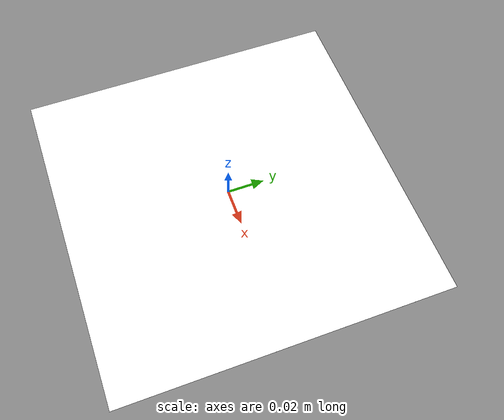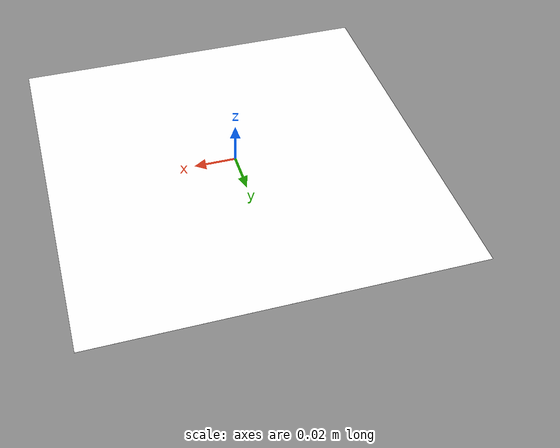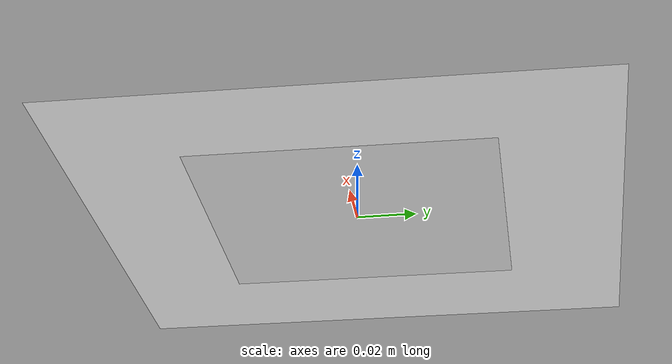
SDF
<?xml version="1.0" ?>
    <sdf version="1.6">
        <model name="marker_24">
            <link name='marker'>
                <pose frame=''>0 0 0 0 0 0</pose>
                <visual name='visual'>
                    <geometry>
                        <box>
                            <size>0.1778 0.1778 1e-5</size>
                        </box>
                    </geometry>
                    <material>
                        <script>
                            <uri>model://marker_24/materials/scripts</uri>
                            <uri>model://marker_24/materials/textures</uri>
                            <name>ArucoVisualMarker24/Marker</name>
                        </script>
                        <ambient>1 1 1 1</ambient>
                        <diffuse>1 1 1 1</diffuse>
                        <specular>0 0 0 1</specular>
                        <emissive>1 1 1 0</emissive>
                        <shader type='vertex'>
                            <normal_map>__default__</normal_map>
                        </shader>
                    </material>
                    <pose frame=''>0 0 0 0 -0 0</pose>
                    <cast_shadows>1</cast_shadows>
                    <transparency>0</transparency>
                </visual>
                <collision name='collision'>
                    <laser_retro>0</laser_retro>
                    <max_contacts>10</max_contacts>
                    <pose frame=''>0 0 0 0 -0 0</pose>
                    <geometry>
                        <box>
                            <size>0.1 0.1 1e-05</size>
                        </box>
                    </geometry>
                </collision>
            </link>

            <link name='marker_pad'>
                <pose frame='marker'>0 0 -1e-5 0 -0 0</pose>
                <visual name='visual'>
                    <geometry>
                        <box>
                            <size>0.1 0.1 1e-5</size>
                        </box>
                    </geometry>
                    <material>
                        <lighting>1</lighting>
                        <script>
                            <uri>file://media/materials/scripts/gazebo.material</uri>
                            <name>Gazebo/White</name>
                        </script>
                        <ambient>0.3 0.3 0.3 1</ambient>
                        <diffuse>0.7 0.7 0.7 1</diffuse>
                        <specular>0.01 0.01 0.01 1</specular>
                        <emissive>1 1 1 0</emissive>
                        <shader type='vertex'>
                            <normal_map>__default__</normal_map>
                        </shader>
                    </material>
                    <cast_shadows>1</cast_shadows>
                    <transparency>0</transparency>
                </visual>
                <collision name='collision'>
                    <laser_retro>0</laser_retro>
                    <max_contacts>10</max_contacts>
                    <pose frame=''>0 0 0 0 -0 0</pose>
                    <geometry>
                        <box>
                            <size>0.1 0.1 1e-5</size>
                        </box>
                    </geometry>
                </collision>
            </link>

            <joint name='marker_JOINT_marker_pad' type='revolute'>
                <parent>marker</parent>
                <child>marker_pad</child>
                <pose frame=''>0 0 0 0 -0 0</pose>
                <axis>
                    <xyz>0 0 1</xyz>
                    <limit>
                        <upper>0</upper>
                        <lower>0</lower>
                    </limit>
                </axis>
            </joint>

            <static>1</static>
            <allow_auto_disable>1</allow_auto_disable>

        </model>
    </sdf>
